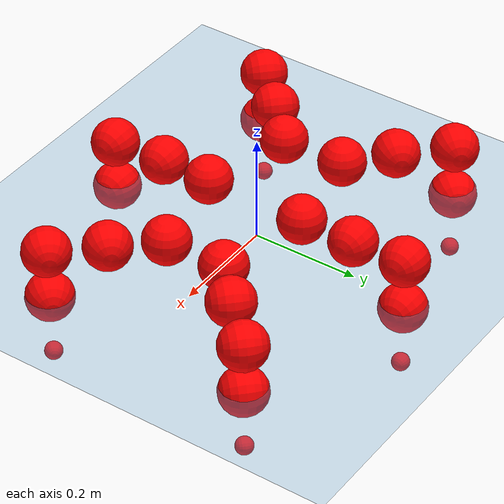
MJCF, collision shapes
<mujoco model="Golem">
  <compiler angle="radian" assetdir="assets" balanceinertia="true" inertiafromgeom="false"/>

  <option timestep="0.005" density="1.2" viscosity="2e-05"/>

  <size nkey="1"/>

  <visual>
    <quality shadowsize="8192"/>
    <map shadowclip="0.5"/>
  </visual>

  <default>
    <default class="/">
      <joint armature="0.01" damping="0.01" frictionloss="0.01"/>
      <geom contype="0" conaffinity="0" group="1" solref="-1000 -80"/>
      <site size="0.01 0.005 0.005" group="5"/>
      <general forcelimited="true" biastype="affine" gainprm="25" biasprm="0 -25 -0.5"/>
      <default class="visual">
        <geom type="mesh" group="2"/>
      </default>
      <default class="collision">
        <geom group="3"/>
      </default>
      <default class="foot">
        <geom size="0.01 0 0" condim="6" group="4" priority="1" solimp="0.015 1 0.01"/>
      </default>
      <default class="reward_collision_sphere">
        <geom group="5" rgba="1 0 0 1"/>
      </default>
    </default>
  </default>

  <asset>
    <texture type="skybox" colorspace="auto" name="//unnamed_texture_0" builtin="gradient" rgb1="0.95 0.95 0.95" rgb2="0.95 0.95 0.95" width="100" height="600"/>
    <texture type="2d" colorspace="auto" name="texplane" builtin="checker" rgb1="0.345 0.575 0.748" rgb2="0.345 0.575 0.748" markrgb="1 1 1" width="512" height="512"/>
    <material name="MatPlane" class="/" texture="texplane" texuniform="true" texrepeat="2 2" specular="0.9"/>
    <mesh name="body" class="/" file="body.stl" scale="0.001 0.001 0.001"/>
    <mesh name="coxa" class="/" file="coxa.stl" scale="0.001 0.001 0.001"/>
    <mesh name="femur" class="/" file="femur.stl" scale="0.001 0.001 0.001"/>
    <mesh name="tibia" class="/" file="tibia.stl" scale="0.001 0.001 0.001"/>
    <mesh name="tarsus" class="/" file="tarsus.stl" scale="0.001 0.001 0.001"/>
  </asset>

  <worldbody>
    <geom name="floor" class="/" size="100 100 0.125" type="plane" group="0" material="MatPlane"/>
    <light name="toplight_shadow" class="/" pos="0 0 5" dir="0.0990148 0.0990148 -0.990148" type="directional" ambient="0.04 0.04 0.04" diffuse="0.55 0.55 0.55" specular="0.12 0.12 0.12"/>
    <light name="toplight_fill" class="/" pos="0 0 5" dir="0.0990148 0.0990148 -0.990148" type="directional" castshadow="false" ambient="0.04 0.04 0.04" diffuse="0.3 0.3 0.3" specular="0.08 0.08 0.08"/>
    <body name="trunk" pos="0.001573 -0.000594506 0.00119759" quat="0.999997 0.000701557 -0.000441185 0.00214102">
      <inertial pos="-0.00217576 -0.00575677 -0.00593843" quat="1 0.000413244 -0.000270677 -0.00085696" mass="5.09992" diaginertia="0.0193846 0.00840668 0.027255"/>
      <joint name="//unnamed_joint_0" type="free"/>
      <geom name="//unnamed_geom_1" class="/" pos="0 0 0.0770789" quat="1 0 0 0" type="mesh" rgba="0.9 0.9 0.9 1" mesh="body"/>
      <site name="imu" class="/" pos="0.146418 -0.0141867 0.117123" size="0.0109597"/>
      <camera name="track" class="/" pos="0 -1.91989 0" quat="0.707107 0.707107 0 0" mode="trackcom"/>
      <camera name="ego_camera" class="/" pos="0.146068 0 0.120436" quat="-0.5 -0.5 0.5 0.5"/>
      <body name="coxa_RR" pos="-0.197174 -0.0828691 0.0770045" quat="0.382379 0.00149969 0.000583601 -0.924004">
        <inertial pos="-0.000592775 0.00118297 0.00110064" quat="0.999567 0.0178131 -0.0233988 0.000580827" mass="0.234173" diaginertia="0.0171802 0.00793209 0.0234499"/>
        <joint name="coxa_joint_RR" class="/" pos="0 0 0" axis="0.000424222 -0.00785215 -0.999969" range="-3.1504 3.25413" armature="0.00796052" damping="0" frictionloss="0.0114211"/>
        <geom name="//unnamed_geom_2" class="/" type="mesh" rgba="0.2 0.2 0.2 1" mesh="coxa"/>
        <geom name="//unnamed_geom_3" class="reward_collision_sphere" size="0.0438387" pos="-0.0337079 0 0"/>
        <body name="femur_RR" pos="0.067299 -0.0032735 0.00120839" quat="0.5 -0.5 0.5 0.5">
          <inertial pos="-0.00401954 0.00123194 -4.04204e-05" quat="0.999832 -0.0154974 -0.00884419 0.00423799" mass="0.25764" diaginertia="0.0175519 0.00798002 0.0256859"/>
          <joint name="femur_joint_RR" class="/" pos="0 0 0" axis="-0.000993358 0.00298126 -0.999995" range="-3.13923 3.14817" armature="0.0106957" damping="0.043893" frictionloss="0.0117032"/>
          <geom name="//unnamed_geom_4" class="/" type="mesh" rgba="0.9 0.9 0.9 1" mesh="femur"/>
          <geom name="//unnamed_geom_5" class="reward_collision_sphere" size="0.0438387"/>
          <body name="tibia_RR" pos="0.000710807 -0.108259 0.000127735" quat="-7.75973e-06 1 0.000169677 0.000139014">
            <inertial pos="0.00177529 0.00255555 0.00139923" quat="0.99998 -0.00367855 -0.00311741 0.00408488" mass="0.243341" diaginertia="0.0181761 0.00795627 0.0246233"/>
            <joint name="tibia_joint_RR" class="/" pos="0 0 0" axis="-0.00151471 -0.0128379 0.999916" range="-3.16953 3.13486" armature="0.010793" damping="0.0150837" frictionloss="0.0110379"/>
            <geom name="//unnamed_geom_6" class="/" type="mesh" rgba="0.2 0.2 0.2 1" mesh="tibia"/>
            <geom name="//unnamed_geom_7" class="reward_collision_sphere" size="0.0438387"/>
            <body name="tarsus_RR" pos="0.102294 -0.00198085 -0.000687154" quat="1 3.61217e-05 -0.000110823 0.000114302">
              <inertial pos="0.0709293 -0.00122036 -0.00132792" quat="0.500649 0.502005 0.498678 0.49866" mass="0.250388" diaginertia="0.0164315 0.00757634 0.0243283"/>
              <joint name="tarsus_joint_RR" class="/" pos="0 0 0" axis="0.0076721 -0.0186473 0.999797" stiffness="0.0054994" range="-3.13839 3.13724" armature="0.0121179" damping="0.0513609" frictionloss="0.0122314"/>
              <geom name="//unnamed_geom_8" class="/" type="mesh" rgba="0.9 0.9 0.9 1" mesh="tarsus"/>
              <geom name="foot_1" class="foot" size="0.00945167" pos="0.125843 0 0" quat="0 -0.707107 0 0.707107"/>
              <geom name="//unnamed_geom_10" class="reward_collision_sphere" size="0.0438387"/>
              <geom name="//unnamed_geom_11" class="reward_collision_sphere" size="0.0164395" pos="0.120787 0 0"/>
              <site name="foot_1" class="foot" pos="0.125843 0 0" quat="0 -0.707107 0 0.707107" size="0.0109597"/>
            </body>
          </body>
        </body>
      </body>
      <body name="coxa_RM" pos="0.00396287 -0.130544 0.0825139" quat="0.706579 -4.7562e-05 -9.3094e-06 -0.707634">
        <inertial pos="0.00371976 0.00127898 -0.00219056" quat="1 0.000304628 0.000229242 0.000809139" mass="0.24725" diaginertia="0.0167967 0.00780447 0.0241991"/>
        <joint name="coxa_joint_RM" class="/" pos="0 0 0" axis="-0.00121899 0.000673539 -0.999999" stiffness="0.00120827" range="-3.18306 3.15652" armature="0.0101077" damping="0.0165566" frictionloss="0.0109559"/>
        <geom name="//unnamed_geom_12" class="/" type="mesh" rgba="0.2 0.2 0.2 1" mesh="coxa"/>
        <geom name="//unnamed_geom_13" class="reward_collision_sphere" size="0.0438387" pos="-0.0337079 0 0"/>
        <body name="femur_RM" pos="0.0662146 -0.00527604 -0.00364452" quat="0.499981 -0.49997 0.500057 0.499992">
          <inertial pos="0.0018707 -0.000253898 0.00157319" quat="0.999665 0.0183934 -0.000395482 -0.0182241" mass="0.285974" diaginertia="0.0189928 0.00884937 0.0263509"/>
          <joint name="femur_joint_RM" class="/" pos="0 0 0" axis="0.000182278 0.00034651 -1" range="-3.03037 3.09276" armature="0.0117926" damping="0.0269131" frictionloss="0.0108581"/>
          <geom name="//unnamed_geom_14" class="/" type="mesh" rgba="0.9 0.9 0.9 1" mesh="femur"/>
          <geom name="//unnamed_geom_15" class="reward_collision_sphere" size="0.0438387"/>
          <body name="tibia_RM" pos="0.0035869 -0.104963 0.0019578" quat="-0.00262222 0.999996 -0.00108308 5.08681e-05">
            <inertial pos="0.00117811 0.000781019 -0.00233869" quat="0.999953 -0.00590325 -0.00253751 0.00728035" mass="0.264394" diaginertia="0.0173229 0.00831825 0.0264295"/>
            <joint name="tibia_joint_RM" class="/" pos="0 0 0" axis="0.00878227 0.0045952 0.999951" stiffness="0.0225563" range="-3.13413 3.12802" armature="0.00968318" damping="0.0149166" frictionloss="0.00966224"/>
            <geom name="//unnamed_geom_16" class="/" type="mesh" rgba="0.2 0.2 0.2 1" mesh="tibia"/>
            <geom name="//unnamed_geom_17" class="reward_collision_sphere" size="0.0438387"/>
            <body name="tarsus_RM" pos="0.0974042 0.00135309 0.00206531" quat="0.999998 0.000246293 -0.00023343 -0.00186915">
              <inertial pos="0.0671273 0.00193526 -0.000247523" quat="0.497818 0.50221 0.506213 0.49367" mass="0.266549" diaginertia="0.0177467 0.00826027 0.0257189"/>
              <joint name="tarsus_joint_RM" class="/" pos="0 0 0" axis="-0.00872842 -0.0116346 0.999894" stiffness="0.00479946" range="-3.11513 3.02702" armature="0.0109411" damping="0.00957625" frictionloss="0.0140288"/>
              <geom name="//unnamed_geom_18" class="/" type="mesh" rgba="0.9 0.9 0.9 1" mesh="tarsus"/>
              <geom name="foot_2" class="foot" size="0.0119665" pos="0.125843 0 0" quat="0 -0.707107 0 0.707107"/>
              <geom name="//unnamed_geom_20" class="reward_collision_sphere" size="0.0438387"/>
              <geom name="//unnamed_geom_21" class="reward_collision_sphere" size="0.0164395" pos="0.120787 0 0"/>
              <site name="foot_2" class="foot" pos="0.125843 0 0" quat="0 -0.707107 0 0.707107" size="0.0109597"/>
            </body>
          </body>
        </body>
      </body>
      <body name="coxa_RF" pos="0.203665 -0.0824602 0.0804061" quat="0.924336 0.000923677 0.00115152 -0.381577">
        <inertial pos="-0.00404122 -0.00430612 0.000257788" quat="0.999995 0.00196005 -0.000503807 -0.00224271" mass="0.268578" diaginertia="0.0171734 0.00811982 0.0250942"/>
        <joint name="coxa_joint_RF" class="/" pos="0 0 0" axis="-0.00614416 -0.00313059 -0.999976" stiffness="0.0316845" range="-3.12101 3.2257" armature="0.00998938" damping="0" frictionloss="0.0121979"/>
        <geom name="//unnamed_geom_22" class="/" type="mesh" rgba="0.2 0.2 0.2 1" mesh="coxa"/>
        <geom name="//unnamed_geom_23" class="reward_collision_sphere" size="0.0438387" pos="-0.0337079 0 0"/>
        <body name="femur_RF" pos="0.0660666 -0.000874994 0.00233732" quat="0.500497 -0.498518 0.500232 0.50075">
          <inertial pos="0.00149669 3.87713e-05 -0.00511144" quat="0.999886 0.00764875 0.00733562 0.0107873" mass="0.277296" diaginertia="0.0191497 0.00865161 0.0283631"/>
          <joint name="femur_joint_RF" class="/" pos="0 0 0" axis="0.0191072 -0.0193588 -0.99963" range="-3.1775 3.13677" armature="0.00765931" damping="0.0178968" frictionloss="0.00989757"/>
          <geom name="//unnamed_geom_24" class="/" type="mesh" rgba="0.9 0.9 0.9 1" mesh="femur"/>
          <geom name="//unnamed_geom_25" class="reward_collision_sphere" size="0.0438387"/>
          <body name="tibia_RF" pos="-0.00388695 -0.102853 0.000716014" quat="4.39789e-05 1 -0.000122305 -2.87662e-05">
            <inertial pos="0.000319372 0.000604889 -0.000116223" quat="0.999939 0.00101567 -0.00787895 0.0077129" mass="0.261965" diaginertia="0.0189637 0.00837694 0.0241283"/>
            <joint name="tibia_joint_RF" class="/" pos="0 0 0" axis="-0.00374017 0.00389226 0.999985" stiffness="0.00451077" range="-3.14971 3.05186" armature="0.0122672" damping="0.00473811" frictionloss="0.0119767"/>
            <geom name="//unnamed_geom_26" class="/" type="mesh" rgba="0.2 0.2 0.2 1" mesh="tibia"/>
            <geom name="//unnamed_geom_27" class="reward_collision_sphere" size="0.0438387"/>
            <body name="tarsus_RF" pos="0.0955772 -0.000565038 -0.000640085" quat="0.999996 -0.000527674 0.00124295 0.00230351">
              <inertial pos="0.0656922 0.000113761 0.000906982" quat="0.501444 0.498557 0.502128 0.497858" mass="0.262967" diaginertia="0.0178567 0.00805235 0.0265856"/>
              <joint name="tarsus_joint_RF" class="/" pos="0 0 0" axis="-0.00682841 -0.00766646 0.999947" range="-3.15134 3.10943" armature="0.0109271" damping="0.0134351" frictionloss="0.0107423"/>
              <geom name="//unnamed_geom_28" class="/" type="mesh" rgba="0.9 0.9 0.9 1" mesh="tarsus"/>
              <geom name="foot_3" class="foot" size="0.0094764" pos="0.125843 0 0" quat="0 -0.707107 0 0.707107"/>
              <geom name="//unnamed_geom_30" class="reward_collision_sphere" size="0.0438387"/>
              <geom name="//unnamed_geom_31" class="reward_collision_sphere" size="0.0164395" pos="0.120787 0 0"/>
              <site name="foot_3" class="foot" pos="0.125843 0 0" quat="0 -0.707107 0 0.707107" size="0.0109597"/>
            </body>
          </body>
        </body>
      </body>
      <body name="coxa_LR" pos="-0.201656 0.0841562 0.0748337" quat="0.381411 0.0010281 -0.000378203 0.924405">
        <inertial pos="-0.00026503 -0.00103032 0.00230674" quat="0.999999 -0.00118902 -0.000300498 -0.000674811" mass="0.261692" diaginertia="0.0187031 0.00843739 0.0272175"/>
        <joint name="coxa_joint_LR" class="/" pos="0 0 0" axis="-0.0142286 -0.00745858 -0.999871" range="-3.1929 3.13483" armature="0.0104606" damping="0.000110947" frictionloss="0.0109"/>
        <geom name="//unnamed_geom_32" class="/" type="mesh" rgba="0.2 0.2 0.2 1" mesh="coxa"/>
        <geom name="//unnamed_geom_33" class="reward_collision_sphere" size="0.0438387" pos="-0.0337079 0 0"/>
        <body name="femur_LR" pos="0.063189 0.00065913 0.00448413" quat="0.499613 -0.500747 0.499957 0.499682">
          <inertial pos="0.000145056 -0.00243769 0.000537859" quat="0.999977 0.00541132 -0.00326603 0.00241093" mass="0.268555" diaginertia="0.0179983 0.00811464 0.0251773"/>
          <joint name="femur_joint_LR" class="/" pos="0 0 0" axis="-0.00132609 0.0160356 0.999871" stiffness="0.00952419" range="-3.06453 3.06689" armature="0.011367" damping="0.0260778" frictionloss="0.00977893"/>
          <geom name="//unnamed_geom_34" class="/" type="mesh" rgba="0.9 0.9 0.9 1" mesh="femur"/>
          <geom name="//unnamed_geom_35" class="reward_collision_sphere" size="0.0438387"/>
          <body name="tibia_LR" pos="0.00271542 -0.106349 0.000217721" quat="0.00091733 0.999999 0.000155865 -0.000605941">
            <inertial pos="0.00551091 -0.00190455 0.00424968" quat="0.999927 0.00888863 -0.00628532 -0.00518774" mass="0.263144" diaginertia="0.0173472 0.00758971 0.0248394"/>
            <joint name="tibia_joint_LR" class="/" pos="0 0 0" axis="-0.00216094 -0.000832792 -0.999997" stiffness="0.00723582" range="-3.22347 3.09613" armature="0.0106553" damping="0.00886642" frictionloss="0.0100258"/>
            <geom name="//unnamed_geom_36" class="/" type="mesh" rgba="0.2 0.2 0.2 1" mesh="tibia"/>
            <geom name="//unnamed_geom_37" class="reward_collision_sphere" size="0.0438387"/>
            <body name="tarsus_LR" pos="0.100623 0.000254875 0.00219455" quat="1 -2.27116e-05 -4.25552e-05 0.000263959">
              <inertial pos="0.0691884 -0.000864187 0.00221458" quat="0.504093 0.49599 0.499077 0.500805" mass="0.248469" diaginertia="0.0170777 0.0076887 0.0240714"/>
              <joint name="tarsus_joint_LR" class="/" pos="0 0 0" axis="-0.0094108 -0.0195617 -0.999764" range="-3.18922 3.1814" armature="0.00955091" damping="0.020811" frictionloss="0.00986677"/>
              <geom name="//unnamed_geom_38" class="/" type="mesh" rgba="0.9 0.9 0.9 1" mesh="tarsus"/>
              <geom name="foot_4" class="foot" size="0.0119112" pos="0.125843 0 0" quat="0.707107 0 -0.707107 0"/>
              <geom name="//unnamed_geom_40" class="reward_collision_sphere" size="0.0438387"/>
              <geom name="//unnamed_geom_41" class="reward_collision_sphere" size="0.0164395" pos="0.120787 0 0"/>
              <site name="foot_4" class="foot" pos="0.125843 0 0" quat="0.707107 0 -0.707107 0" size="0.0109597"/>
            </body>
          </body>
        </body>
      </body>
      <body name="coxa_LM" pos="0.00289665 0.129435 0.0792428" quat="0.70729 0.000591337 0.000113843 0.706923">
        <inertial pos="-0.00406488 -0.00523124 0.00217511" quat="1 0.000219648 6.48539e-05 0.000690383" mass="0.265935" diaginertia="0.0185447 0.0082089 0.0257353"/>
        <joint name="coxa_joint_LM" class="/" pos="0 0 0" axis="-0.0115502 -0.00800049 -0.999901" stiffness="0.00980408" range="-3.14769 3.14722" armature="0.00929295" damping="0.0352355" frictionloss="0.0108394"/>
        <geom name="//unnamed_geom_42" class="/" type="mesh" rgba="0.2 0.2 0.2 1" mesh="coxa"/>
        <geom name="//unnamed_geom_43" class="reward_collision_sphere" size="0.0438387" pos="-0.0337079 0 0"/>
        <body name="femur_LM" pos="0.0702885 -0.000803165 -0.000452543" quat="0.498522 -0.501871 0.499597 0.500004">
          <inertial pos="0.000984072 -0.000320952 -0.00264671" quat="0.999944 0.00461899 0.00522778 -0.00796385" mass="0.271545" diaginertia="0.0179583 0.0085014 0.0268654"/>
          <joint name="femur_joint_LM" class="/" pos="0 0 0" axis="0.00319137 -0.0111326 0.999933" range="-3.11043 3.13289" armature="0.0139104" damping="0.0210243" frictionloss="0.0118662"/>
          <geom name="//unnamed_geom_44" class="/" type="mesh" rgba="0.9 0.9 0.9 1" mesh="femur"/>
          <geom name="//unnamed_geom_45" class="reward_collision_sphere" size="0.0438387"/>
          <body name="tibia_LM" pos="-0.00066636 -0.100441 0.0017523" quat="0.000200806 1 -0.000560379 0.000156681">
            <inertial pos="0.00198879 -0.00341213 0.000694668" quat="0.999958 -0.005112 0.00642723 0.0041365" mass="0.274359" diaginertia="0.0181292 0.00791884 0.0239696"/>
            <joint name="tibia_joint_LM" class="/" pos="0 0 0" axis="0.00065599 0.00177791 -0.999998" range="-3.17418 3.10575" armature="0.0111504" damping="0.0228348" frictionloss="0.0111907"/>
            <geom name="//unnamed_geom_46" class="/" type="mesh" rgba="0.2 0.2 0.2 1" mesh="tibia"/>
            <geom name="//unnamed_geom_47" class="reward_collision_sphere" size="0.0438387"/>
            <body name="tarsus_LM" pos="0.0970486 0.0017876 0.00195876" quat="1 -0.000245783 -0.000154802 0.000257646">
              <inertial pos="0.0640485 -0.000923943 -0.000185101" quat="0.499954 0.500421 0.499063 0.50056" mass="0.234849" diaginertia="0.0172783 0.00799795 0.0252059"/>
              <joint name="tarsus_joint_LM" class="/" pos="0 0 0" axis="-0.00289958 0.00480622 -0.999984" range="-3.14145 3.16255" armature="0.0107287" damping="0" frictionloss="0.0108259"/>
              <geom name="//unnamed_geom_48" class="/" type="mesh" rgba="0.9 0.9 0.9 1" mesh="tarsus"/>
              <geom name="foot_5" class="foot" size="0.0118474" pos="0.125843 0 0" quat="0.707107 0 -0.707107 0"/>
              <geom name="//unnamed_geom_50" class="reward_collision_sphere" size="0.0438387"/>
              <geom name="//unnamed_geom_51" class="reward_collision_sphere" size="0.0164395" pos="0.120787 0 0"/>
              <site name="foot_5" class="foot" pos="0.125843 0 0" quat="0.707107 0 -0.707107 0" size="0.0109597"/>
            </body>
          </body>
        </body>
      </body>
      <body name="coxa_LF" pos="0.201936 0.080942 0.0779563" quat="0.923877 -1.57625e-05 1.91917e-05 0.382689">
        <inertial pos="-0.000800298 0.00246088 0.000511161" quat="0.999999 -0.00106835 -0.000118552 -0.000387718" mass="0.266261" diaginertia="0.0177802 0.00789515 0.0245079"/>
        <joint name="coxa_joint_LF" class="/" pos="0 0 0" axis="-0.00424025 -0.0232927 -0.99972" range="-3.10079 3.11937" armature="0.0118859" damping="0.00907693" frictionloss="0.0108815"/>
        <geom name="//unnamed_geom_52" class="/" type="mesh" rgba="0.2 0.2 0.2 1" mesh="coxa"/>
        <geom name="//unnamed_geom_53" class="reward_collision_sphere" size="0.0438387" pos="-0.0337079 0 0"/>
        <body name="femur_LF" pos="0.0667069 -0.00548971 0.0056943" quat="0.500933 -0.499977 0.499948 0.49914">
          <inertial pos="0.00304015 0.000815209 -0.0022625" quat="0.999995 -0.000473722 -0.00198765 0.00233097" mass="0.258169" diaginertia="0.0176703 0.00837047 0.026445"/>
          <joint name="femur_joint_LF" class="/" pos="0 0 0" axis="-0.01374 -0.00193781 0.999904" range="-3.14485 3.21566" armature="0.0122835" damping="0.015553" frictionloss="0.0123264"/>
          <geom name="//unnamed_geom_54" class="/" type="mesh" rgba="0.9 0.9 0.9 1" mesh="femur"/>
          <geom name="//unnamed_geom_55" class="reward_collision_sphere" size="0.0438387"/>
          <body name="tibia_LF" pos="0.00432087 -0.106713 0.0007655" quat="0.000336905 0.999999 0.000367504 0.00100775">
            <inertial pos="0.00204591 0.00081328 0.0024271" quat="0.999805 0.0015127 -0.019097 -0.00488059" mass="0.269905" diaginertia="0.0180182 0.00832697 0.0258777"/>
            <joint name="tibia_joint_LF" class="/" pos="0 0 0" axis="9.28687e-05 0.00374214 -0.999993" range="-3.13529 3.13462" armature="0.0141224" damping="0.0311813" frictionloss="0.0111988"/>
            <geom name="//unnamed_geom_56" class="/" type="mesh" rgba="0.2 0.2 0.2 1" mesh="tibia"/>
            <geom name="//unnamed_geom_57" class="reward_collision_sphere" size="0.0438387"/>
            <body name="tarsus_LF" pos="0.0958847 0.00101541 0.000187176" quat="0.999996 0.00136373 0.00232048 -0.000882597">
              <inertial pos="0.065208 0.00364195 0.00159307" quat="0.498396 0.504953 0.49755 0.499068" mass="0.274957" diaginertia="0.0178701 0.00840595 0.0251929"/>
              <joint name="tarsus_joint_LF" class="/" pos="0 0 0" axis="-0.00321567 -0.0169322 -0.999851" stiffness="0.0033117" range="-3.20222 3.18301" armature="0.0120588" damping="0" frictionloss="0.0107795"/>
              <geom name="//unnamed_geom_58" class="/" type="mesh" rgba="0.9 0.9 0.9 1" mesh="tarsus"/>
              <geom name="foot_6" class="foot" size="0.0119472" pos="0.125843 0 0" quat="0.707107 0 -0.707107 0"/>
              <geom name="//unnamed_geom_60" class="reward_collision_sphere" size="0.0438387"/>
              <geom name="//unnamed_geom_61" class="reward_collision_sphere" size="0.0164395" pos="0.120787 0 0"/>
              <site name="foot_6" class="foot" pos="0.125843 0 0" quat="0.707107 0 -0.707107 0" size="0.0109597"/>
            </body>
          </body>
        </body>
      </body>
    </body>
  </worldbody>

  <contact>
    <pair class="/" geom1="floor" geom2="foot_1" name="//unnamed_contact_0"/>
    <pair class="/" geom1="floor" geom2="foot_2" name="//unnamed_contact_1"/>
    <pair class="/" geom1="floor" geom2="foot_3" name="//unnamed_contact_2"/>
    <pair class="/" geom1="floor" geom2="foot_4" name="//unnamed_contact_3"/>
    <pair class="/" geom1="floor" geom2="foot_5" name="//unnamed_contact_4"/>
    <pair class="/" geom1="floor" geom2="foot_6" name="//unnamed_contact_5"/>
  </contact>

  <actuator>
    <general name="coxa_joint_RR" class="/" joint="coxa_joint_RR" forcerange="-8.59155 8.59155" gainprm="26.2025" biasprm="0 -26.2025 -0.545514"/>
    <general name="femur_joint_RR" class="/" joint="femur_joint_RR" forcerange="-7.93376 7.93376" gainprm="26.2025" biasprm="0 -26.2025 -0.545514"/>
    <general name="tibia_joint_RR" class="/" joint="tibia_joint_RR" forcerange="-8.28784 8.28784" gainprm="26.2025" biasprm="0 -26.2025 -0.545514"/>
    <general name="tarsus_joint_RR" class="/" joint="tarsus_joint_RR" forcerange="-7.31049 7.31049" gainprm="26.2025" biasprm="0 -26.2025 -0.545514"/>
    <general name="coxa_joint_RM" class="/" joint="coxa_joint_RM" forcerange="-7.35629 7.35629" gainprm="26.2025" biasprm="0 -26.2025 -0.545514"/>
    <general name="femur_joint_RM" class="/" joint="femur_joint_RM" forcerange="-8.6467 8.6467" gainprm="26.2025" biasprm="0 -26.2025 -0.545514"/>
    <general name="tibia_joint_RM" class="/" joint="tibia_joint_RM" forcerange="-8.11783 8.11783" gainprm="26.2025" biasprm="0 -26.2025 -0.545514"/>
    <general name="tarsus_joint_RM" class="/" joint="tarsus_joint_RM" forcerange="-8.54183 8.54183" gainprm="26.2025" biasprm="0 -26.2025 -0.545514"/>
    <general name="coxa_joint_RF" class="/" joint="coxa_joint_RF" forcerange="-8.79888 8.79888" gainprm="26.2025" biasprm="0 -26.2025 -0.545514"/>
    <general name="femur_joint_RF" class="/" joint="femur_joint_RF" forcerange="-8.52019 8.52019" gainprm="26.2025" biasprm="0 -26.2025 -0.545514"/>
    <general name="tibia_joint_RF" class="/" joint="tibia_joint_RF" forcerange="-7.59375 7.59375" gainprm="26.2025" biasprm="0 -26.2025 -0.545514"/>
    <general name="tarsus_joint_RF" class="/" joint="tarsus_joint_RF" forcerange="-8.35664 8.35664" gainprm="26.2025" biasprm="0 -26.2025 -0.545514"/>
    <general name="coxa_joint_LR" class="/" joint="coxa_joint_LR" forcerange="-7.36163 7.36163" gainprm="26.2025" biasprm="0 -26.2025 -0.545514"/>
    <general name="femur_joint_LR" class="/" joint="femur_joint_LR" forcerange="-7.91353 7.91353" gainprm="26.2025" biasprm="0 -26.2025 -0.545514"/>
    <general name="tibia_joint_LR" class="/" joint="tibia_joint_LR" forcerange="-9.3252 9.3252" gainprm="26.2025" biasprm="0 -26.2025 -0.545514"/>
    <general name="tarsus_joint_LR" class="/" joint="tarsus_joint_LR" forcerange="-6.46914 6.46914" gainprm="26.2025" biasprm="0 -26.2025 -0.545514"/>
    <general name="coxa_joint_LM" class="/" joint="coxa_joint_LM" forcerange="-8.17779 8.17779" gainprm="26.2025" biasprm="0 -26.2025 -0.545514"/>
    <general name="femur_joint_LM" class="/" joint="femur_joint_LM" forcerange="-7.79041 7.79041" gainprm="26.2025" biasprm="0 -26.2025 -0.545514"/>
    <general name="tibia_joint_LM" class="/" joint="tibia_joint_LM" forcerange="-8.14108 8.14108" gainprm="26.2025" biasprm="0 -26.2025 -0.545514"/>
    <general name="tarsus_joint_LM" class="/" joint="tarsus_joint_LM" forcerange="-7.56883 7.56883" gainprm="26.2025" biasprm="0 -26.2025 -0.545514"/>
    <general name="coxa_joint_LF" class="/" joint="coxa_joint_LF" forcerange="-8.2081 8.2081" gainprm="26.2025" biasprm="0 -26.2025 -0.545514"/>
    <general name="femur_joint_LF" class="/" joint="femur_joint_LF" forcerange="-8.05119 8.05119" gainprm="26.2025" biasprm="0 -26.2025 -0.545514"/>
    <general name="tibia_joint_LF" class="/" joint="tibia_joint_LF" forcerange="-8.54499 8.54499" gainprm="26.2025" biasprm="0 -26.2025 -0.545514"/>
    <general name="tarsus_joint_LF" class="/" joint="tarsus_joint_LF" forcerange="-7.41147 7.41147" gainprm="26.2025" biasprm="0 -26.2025 -0.545514"/>
  </actuator>

  <sensor>
    <gyro site="imu" name="imu_angular_velocity"/>
    <velocimeter site="imu" name="imu_linear_velocity"/>
    <framelinvel objtype="site" objname="foot_1" name="foot_1_global_linear_velocity"/>
    <framelinvel objtype="site" objname="foot_2" name="foot_2_global_linear_velocity"/>
    <framelinvel objtype="site" objname="foot_3" name="foot_3_global_linear_velocity"/>
    <framelinvel objtype="site" objname="foot_4" name="foot_4_global_linear_velocity"/>
    <framelinvel objtype="site" objname="foot_5" name="foot_5_global_linear_velocity"/>
    <framelinvel objtype="site" objname="foot_6" name="foot_6_global_linear_velocity"/>
  </sensor>

  <keyframe>
    <key name="home" qpos="0 0 0.1457 1 0 0 0 0 0 0 0 0 0 0 0 0 0 0 0 0 0 0 0 0 0 0 0 0 0 0 0"/>
  </keyframe>
</mujoco>
